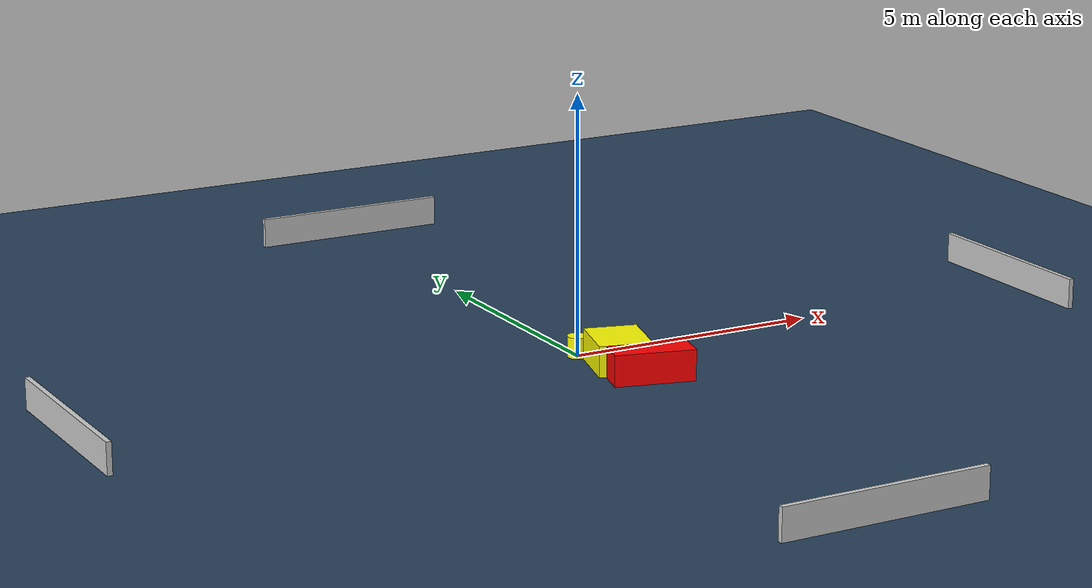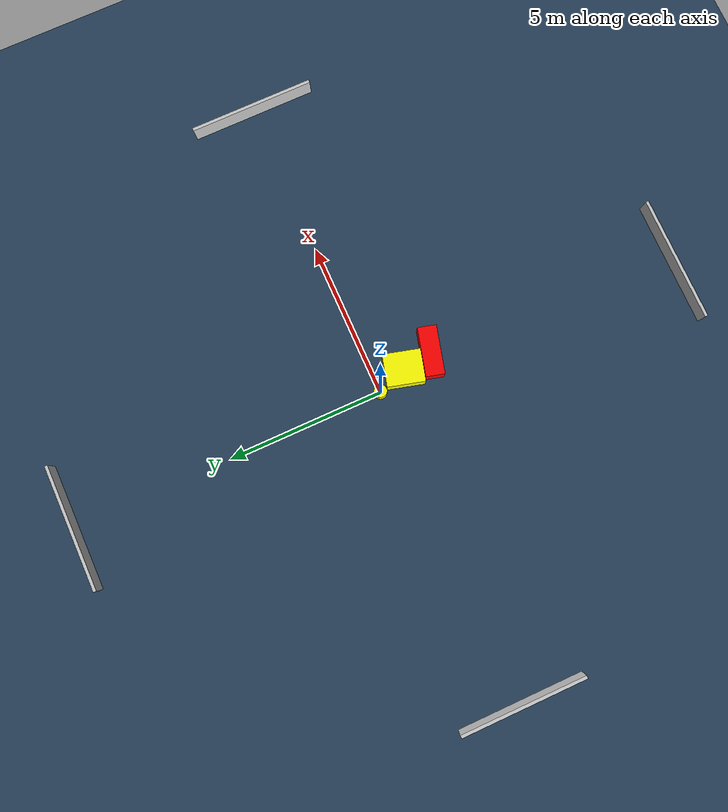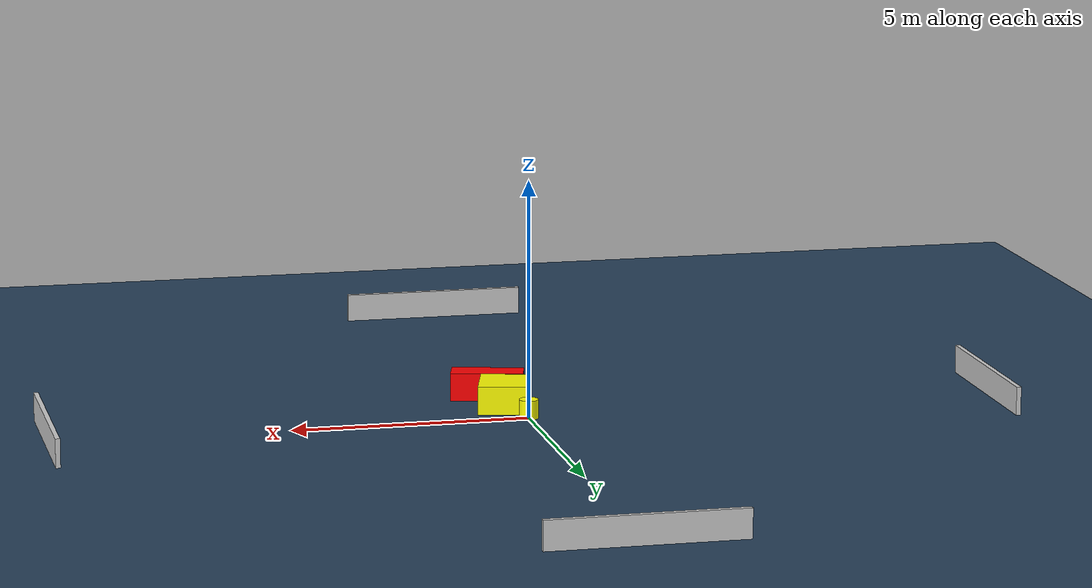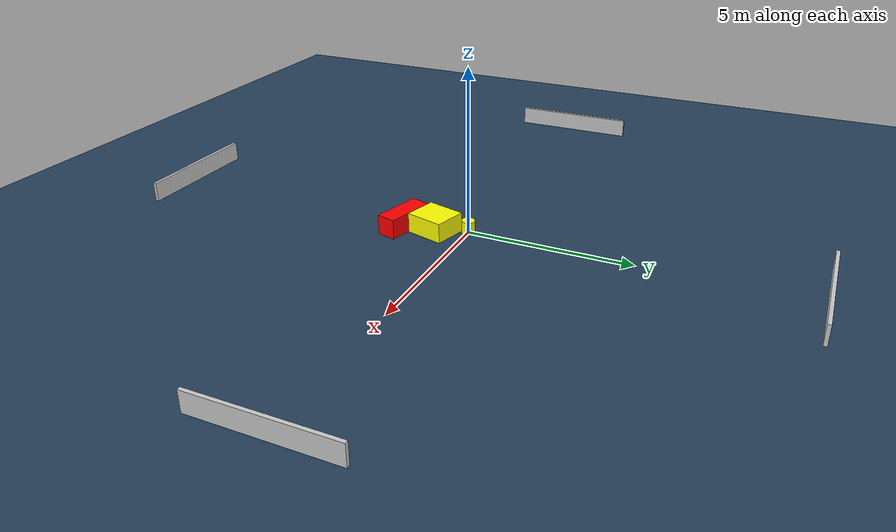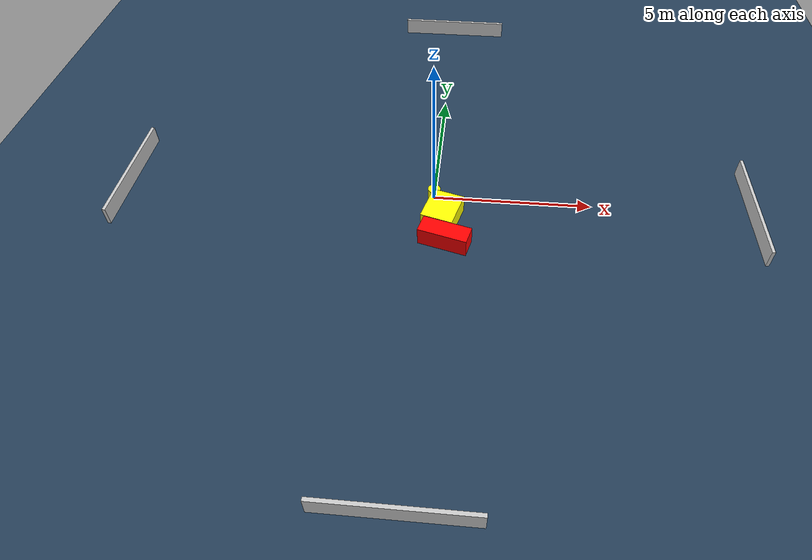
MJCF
<?xml version="1.0" ?>
<mujoco model="generated_environment">
  <option timestep="0.01" integrator="RK4" cone="elliptic"/>
  <default>
    <geom density="1"/>
  </default>
  <asset>
    <texture builtin="gradient" height="3072" name="skybox" rgb1="0.3 0.5 0.7" rgb2="0 0 0" type="skybox" width="512"/>
    <texture builtin="checker" height="300" name="groundplane" rgb1="0.2 0.3 0.4" rgb2="0.1 0.2 0.3" type="2d" width="300"/>
    <material name="groundplane" reflectance="0.2" texrepeat="5 5" texture="groundplane"/>
  </asset>
  <worldbody>
    <light dir="0 0 -1" directional="true" pos="0 0 1.5"/>
    <geom condim="3" friction="0.5 0.005 0.001" material="groundplane" name="floor" pos="0 0 0" size="0 0 0.05" type="plane"/>
    <body name="walls">
      <geom name="wall_1" condim="4" pos="-10.0 0.0 0.3" rgba="0.800000011920929 0.800000011920929 0.800000011920929 1.0" size="0.05 2.0 0.3" type="box"/>
      <geom name="wall_2" condim="4" pos="10.0 0.0 0.3" rgba="0.800000011920929 0.800000011920929 0.800000011920929 1.0" size="0.05 2.0 0.3" type="box"/>
      <geom name="wall_3" condim="4" pos="0.0 -10.0 0.3" rgba="0.800000011920929 0.800000011920929 0.800000011920929 1.0" size="2.0 0.05 0.3" type="box"/>
      <geom name="wall_4" condim="4" pos="0.0 10.0 0.3" rgba="0.800000011920929 0.800000011920929 0.800000011920929 1.0" size="2.0 0.05 0.3" type="box"/>
    </body>
    <body name="robot">
      <joint name="joint_x" type="slide" pos="0 0 0" axis="1 0 0"/>
      <joint name="joint_y" type="slide" pos="0 0 0" axis="0 1 0"/>
      <geom name="robot" type="cylinder" pos="0.0 0.0 0.2" size="0.2 0.2 0.0" mass="5.0" friction="1.0 0.005 0.0001" condim="4" rgba="1.0 1.0 0.0 1.0"/>
    </body>
    <body name="obstacle_1_movable">
      <geom name="obstacle_1_movable" condim="4" pos="0.33261213618186325 -0.9221364092203427 0.3" euler="0 0 254.81664710932304" friction="0.0 0.005 0.001" rgba="1.0 1.0 0.0 1.0" size="0.5941541247281514 0.509848239569717 0.3" type="box" mass="0.1"/>
      <joint type="free"/>
    </body>
    <body name="obstacle_2_static">
      <geom name="obstacle_2_static" condim="4" pos="0.47366451991244907 -1.893214197115469 0.3" euler="0 0 345.2654704184929" friction="0.0 0.005 0.001" rgba="1.0 0.0 0.0 1.0" size="0.7677777749075647 0.2961391995631073 0.3" type="box"/>
    </body>
  </worldbody>
  <actuator>
    <motor name="actuator_x" joint="joint_x" gear="1" ctrlrange="-1 1"/>
    <motor name="actuator_y" joint="joint_y" gear="1" ctrlrange="-1 1"/>
  </actuator>
</mujoco>
